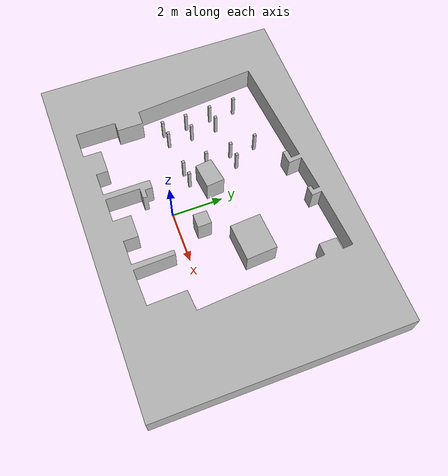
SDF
<?xml version='1.0'?>
<sdf version="1.4">
<model name="map_inspire_lab_20180929">
  <pose>-0.025 -0.025 0.5 0 0 0</pose>
  <static>true</static>
    <link name="link">
      <collision name="collision">
        <geometry>
          <mesh><uri>file://models/map_inspire_lab_20180929/model.stl</uri></mesh>
        </geometry>
      </collision>
      <visual name="visual">
        <geometry>
          <mesh><uri>file://models/map_inspire_lab_20180929/model.stl</uri></mesh>
        </geometry>
      </visual>
    </link>
  </model>
</sdf>
